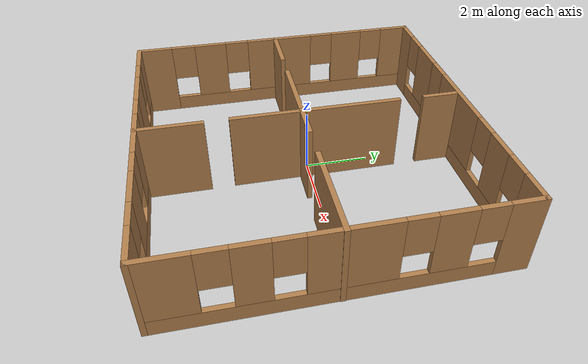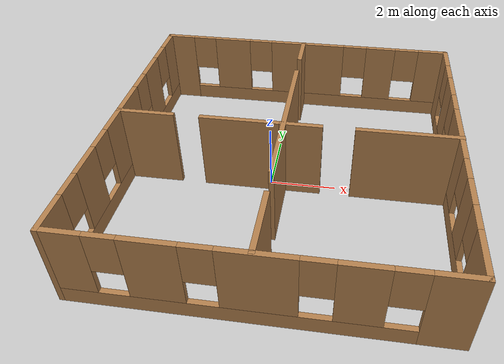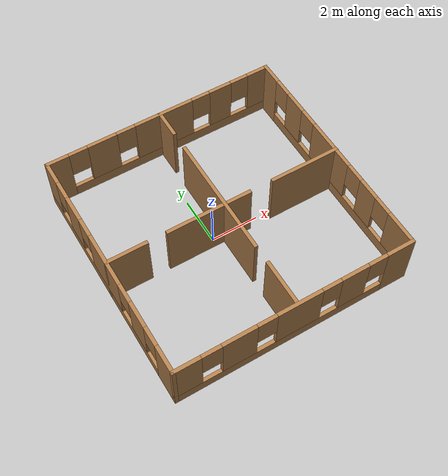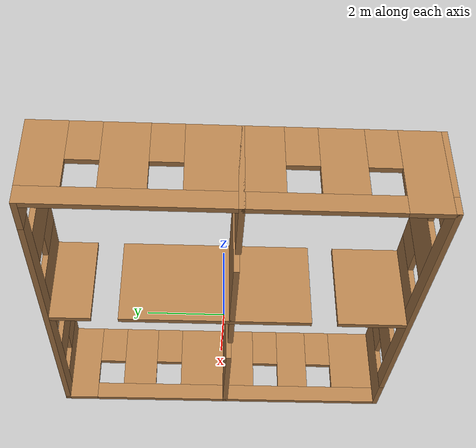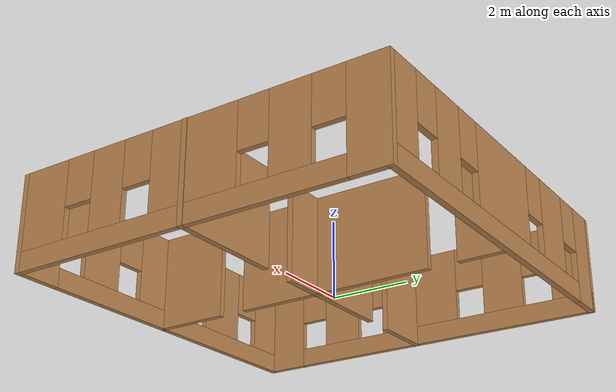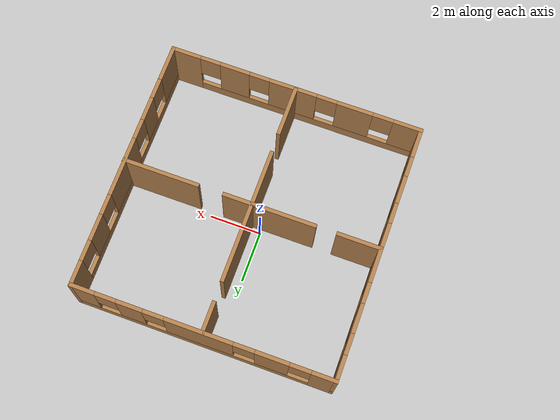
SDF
<?xml version='1.0'?>
<sdf version='1.7'>
  <model name='squre_house'>
    <pose>0.456528 -0.161928 0 0 -0 0</pose>
    <link name='Wall_10'>
      <pose>-4.93176 -0 0 0 -0 1.5708</pose>
      <visual name='Wall_10_Visual_0'>
        <pose>-4.40013 0 1.25 0 -0 0</pose>
        <geometry>
          <box>
            <size>1.19973 0.15 2.5</size>
          </box>
        </geometry>
        <material>
          <script>
            <uri>file://media/materials/scripts/gazebo.material</uri>
            <name>Gazebo/Wood</name>
          </script>
          <ambient>1 1 1 1</ambient>
        </material>
        <meta>
          <layer>0</layer>
        </meta>
      </visual>
      <collision name='Wall_10_Collision_0'>
        <geometry>
          <box>
            <size>1.19973 0.15 2.5</size>
          </box>
        </geometry>
        <pose>-4.40013 0 1.25 0 -0 0</pose>
      </collision>
      <visual name='Wall_10_Visual_1'>
        <pose>0.599865 0 0.25 0 -0 0</pose>
        <geometry>
          <box>
            <size>8.80027 0.15 0.5</size>
          </box>
        </geometry>
        <material>
          <script>
            <uri>file://media/materials/scripts/gazebo.material</uri>
            <name>Gazebo/Wood</name>
          </script>
          <ambient>1 1 1 1</ambient>
        </material>
        <meta>
          <layer>0</layer>
        </meta>
      </visual>
      <collision name='Wall_10_Collision_1'>
        <geometry>
          <box>
            <size>8.80027 0.15 0.5</size>
          </box>
        </geometry>
        <pose>0.599865 0 0.25 0 -0 0</pose>
      </collision>
      <visual name='Wall_10_Visual_2'>
        <pose>-2.44706 0 1.5 0 -0 0</pose>
        <geometry>
          <box>
            <size>1.10642 0.15 2</size>
          </box>
        </geometry>
        <material>
          <script>
            <uri>file://media/materials/scripts/gazebo.material</uri>
            <name>Gazebo/Wood</name>
          </script>
          <ambient>1 1 1 1</ambient>
        </material>
        <meta>
          <layer>0</layer>
        </meta>
      </visual>
      <collision name='Wall_10_Collision_2'>
        <geometry>
          <box>
            <size>1.10642 0.15 2</size>
          </box>
        </geometry>
        <pose>-2.44706 0 1.5 0 -0 0</pose>
      </collision>
      <visual name='Wall_10_Visual_3'>
        <pose>0.071508 0 1.5 0 -0 0</pose>
        <geometry>
          <box>
            <size>2.33072 0.15 2</size>
          </box>
        </geometry>
        <material>
          <script>
            <uri>file://media/materials/scripts/gazebo.material</uri>
            <name>Gazebo/Wood</name>
          </script>
          <ambient>1 1 1 1</ambient>
        </material>
        <meta>
          <layer>0</layer>
        </meta>
      </visual>
      <collision name='Wall_10_Collision_3'>
        <geometry>
          <box>
            <size>2.33072 0.15 2</size>
          </box>
        </geometry>
        <pose>0.071508 0 1.5 0 -0 0</pose>
      </collision>
      <visual name='Wall_10_Visual_4'>
        <pose>2.59882 0 1.5 0 -0 0</pose>
        <geometry>
          <box>
            <size>1.12391 0.15 2</size>
          </box>
        </geometry>
        <material>
          <script>
            <uri>file://media/materials/scripts/gazebo.material</uri>
            <name>Gazebo/Wood</name>
          </script>
          <ambient>1 1 1 1</ambient>
        </material>
        <meta>
          <layer>0</layer>
        </meta>
      </visual>
      <collision name='Wall_10_Collision_4'>
        <geometry>
          <box>
            <size>1.12391 0.15 2</size>
          </box>
        </geometry>
        <pose>2.59882 0 1.5 0 -0 0</pose>
      </collision>
      <visual name='Wall_10_Visual_5'>
        <pose>4.48039 0 1.5 0 -0 0</pose>
        <geometry>
          <box>
            <size>1.03923 0.15 2</size>
          </box>
        </geometry>
        <material>
          <script>
            <uri>file://media/materials/scripts/gazebo.material</uri>
            <name>Gazebo/Wood</name>
          </script>
          <ambient>1 1 1 1</ambient>
        </material>
        <meta>
          <layer>0</layer>
        </meta>
      </visual>
      <collision name='Wall_10_Collision_5'>
        <geometry>
          <box>
            <size>1.03923 0.15 2</size>
          </box>
        </geometry>
        <pose>4.48039 0 1.5 0 -0 0</pose>
      </collision>
      <visual name='Wall_10_Visual_6'>
        <pose>-3.40027 0 1.9 0 -0 0</pose>
        <geometry>
          <box>
            <size>0.8 0.15 1.2</size>
          </box>
        </geometry>
        <material>
          <script>
            <uri>file://media/materials/scripts/gazebo.material</uri>
            <name>Gazebo/Wood</name>
          </script>
          <ambient>1 1 1 1</ambient>
        </material>
        <meta>
          <layer>0</layer>
        </meta>
      </visual>
      <collision name='Wall_10_Collision_6'>
        <geometry>
          <box>
            <size>0.8 0.15 1.2</size>
          </box>
        </geometry>
        <pose>-3.40027 0 1.9 0 -0 0</pose>
      </collision>
      <visual name='Wall_10_Visual_7'>
        <pose>-1.49385 0 1.9 0 -0 0</pose>
        <geometry>
          <box>
            <size>0.8 0.15 1.2</size>
          </box>
        </geometry>
        <material>
          <script>
            <uri>file://media/materials/scripts/gazebo.material</uri>
            <name>Gazebo/Wood</name>
          </script>
          <ambient>1 1 1 1</ambient>
        </material>
        <meta>
          <layer>0</layer>
        </meta>
      </visual>
      <collision name='Wall_10_Collision_7'>
        <geometry>
          <box>
            <size>0.8 0.15 1.2</size>
          </box>
        </geometry>
        <pose>-1.49385 0 1.9 0 -0 0</pose>
      </collision>
      <visual name='Wall_10_Visual_8'>
        <pose>1.63687 0 1.9 0 -0 0</pose>
        <geometry>
          <box>
            <size>0.8 0.15 1.2</size>
          </box>
        </geometry>
        <material>
          <script>
            <uri>file://media/materials/scripts/gazebo.material</uri>
            <name>Gazebo/Wood</name>
          </script>
          <ambient>1 1 1 1</ambient>
        </material>
        <meta>
          <layer>0</layer>
        </meta>
      </visual>
      <collision name='Wall_10_Collision_8'>
        <geometry>
          <box>
            <size>0.8 0.15 1.2</size>
          </box>
        </geometry>
        <pose>1.63687 0 1.9 0 -0 0</pose>
      </collision>
      <visual name='Wall_10_Visual_9'>
        <pose>3.56078 0 1.9 0 -0 0</pose>
        <geometry>
          <box>
            <size>0.8 0.15 1.2</size>
          </box>
        </geometry>
        <material>
          <script>
            <uri>file://media/materials/scripts/gazebo.material</uri>
            <name>Gazebo/Wood</name>
          </script>
          <ambient>1 1 1 1</ambient>
        </material>
        <meta>
          <layer>0</layer>
        </meta>
      </visual>
      <collision name='Wall_10_Collision_9'>
        <geometry>
          <box>
            <size>0.8 0.15 1.2</size>
          </box>
        </geometry>
        <pose>3.56078 0 1.9 0 -0 0</pose>
      </collision>
    </link>
    <link name='Wall_12'>
      <collision name='Wall_12_Collision'>
        <geometry>
          <box>
            <size>1.25 0.15 2.5</size>
          </box>
        </geometry>
        <pose>0 0 1.25 0 -0 0</pose>
      </collision>
      <visual name='Wall_12_Visual'>
        <pose>0 0 1.25 0 -0 0</pose>
        <geometry>
          <box>
            <size>1.25 0.15 2.5</size>
          </box>
        </geometry>
        <material>
          <script>
            <uri>file://media/materials/scripts/gazebo.material</uri>
            <name>Gazebo/Wood</name>
          </script>
          <ambient>1 1 1 1</ambient>
        </material>
        <meta>
          <layer>0</layer>
        </meta>
      </visual>
      <pose>-0.03454 4.35751 0 0 -0 -1.5708</pose>
    </link>
    <link name='Wall_14'>
      <collision name='Wall_14_Collision'>
        <geometry>
          <box>
            <size>2 0.15 2.5</size>
          </box>
        </geometry>
        <pose>0 0 1.25 0 -0 0</pose>
      </collision>
      <visual name='Wall_14_Visual'>
        <pose>0 0 1.25 0 -0 0</pose>
        <geometry>
          <box>
            <size>2 0.15 2.5</size>
          </box>
        </geometry>
        <material>
          <script>
            <uri>file://media/materials/scripts/gazebo.material</uri>
            <name>Gazebo/Wood</name>
          </script>
          <ambient>1 1 1 1</ambient>
        </material>
        <meta>
          <layer>0</layer>
        </meta>
      </visual>
      <pose>-0.01705 -3.96192 0 0 -0 1.5708</pose>
    </link>
    <link name='Wall_17'>
      <collision name='Wall_17_Collision'>
        <geometry>
          <box>
            <size>1.75 0.15 2.5</size>
          </box>
        </geometry>
        <pose>0 0 1.25 0 -0 0</pose>
      </collision>
      <visual name='Wall_17_Visual'>
        <pose>0 0 1.25 0 -0 0</pose>
        <geometry>
          <box>
            <size>1.75 0.15 2.5</size>
          </box>
        </geometry>
        <material>
          <script>
            <uri>file://media/materials/scripts/gazebo.material</uri>
            <name>Gazebo/Wood</name>
          </script>
          <ambient>1 1 1 1</ambient>
        </material>
        <meta>
          <layer>0</layer>
        </meta>
      </visual>
      <pose>-4.13176 -0.077158 0 0 -0 0</pose>
    </link>
    <link name='Wall_19'>
      <collision name='Wall_19_Collision'>
        <geometry>
          <box>
            <size>2.5 0.15 2.5</size>
          </box>
        </geometry>
        <pose>0 0 1.25 0 -0 0</pose>
      </collision>
      <visual name='Wall_19_Visual'>
        <pose>0 0 1.25 0 -0 0</pose>
        <geometry>
          <box>
            <size>2.5 0.15 2.5</size>
          </box>
        </geometry>
        <material>
          <script>
            <uri>file://media/materials/scripts/gazebo.material</uri>
            <name>Gazebo/Wood</name>
          </script>
          <ambient>1 1 1 1</ambient>
        </material>
        <meta>
          <layer>0</layer>
        </meta>
      </visual>
      <pose>-1.25568 -0.077158 0 0 -0 0</pose>
    </link>
    <link name='Wall_21'>
      <collision name='Wall_21_Collision'>
        <geometry>
          <box>
            <size>3 0.15 2.5</size>
          </box>
        </geometry>
        <pose>0 0 1.25 0 -0 0</pose>
      </collision>
      <visual name='Wall_21_Visual'>
        <pose>0 0 1.25 0 -0 0</pose>
        <geometry>
          <box>
            <size>3 0.15 2.5</size>
          </box>
        </geometry>
        <material>
          <script>
            <uri>file://media/materials/scripts/gazebo.material</uri>
            <name>Gazebo/Wood</name>
          </script>
          <ambient>1 1 1 1</ambient>
        </material>
        <meta>
          <layer>0</layer>
        </meta>
      </visual>
      <pose>3.50676 -0.077158 0 0 -0 0</pose>
    </link>
    <link name='Wall_23'>
      <collision name='Wall_23_Collision'>
        <geometry>
          <box>
            <size>5.25 0.15 2.5</size>
          </box>
        </geometry>
        <pose>0 0 1.25 0 -0 0</pose>
      </collision>
      <visual name='Wall_23_Visual'>
        <pose>0 0 1.25 0 -0 0</pose>
        <geometry>
          <box>
            <size>5.25 0.15 2.5</size>
          </box>
        </geometry>
        <material>
          <script>
            <uri>file://media/materials/scripts/gazebo.material</uri>
            <name>Gazebo/Wood</name>
          </script>
          <ambient>1 1 1 1</ambient>
        </material>
        <meta>
          <layer>0</layer>
        </meta>
      </visual>
      <pose>-0.03454 0.374034 0 0 -0 1.5708</pose>
    </link>
    <link name='Wall_25'>
      <collision name='Wall_25_Collision'>
        <geometry>
          <box>
            <size>1.25 0.15 2.5</size>
          </box>
        </geometry>
        <pose>0 0 1.25 0 -0 0</pose>
      </collision>
      <visual name='Wall_25_Visual'>
        <pose>0 0 1.25 0 -0 0</pose>
        <geometry>
          <box>
            <size>1.25 0.15 2.5</size>
          </box>
        </geometry>
        <material>
          <script>
            <uri>file://media/materials/scripts/gazebo.material</uri>
            <name>Gazebo/Wood</name>
          </script>
          <ambient>1 1 1 1</ambient>
        </material>
        <meta>
          <layer>0</layer>
        </meta>
      </visual>
      <pose>0.469322 -0.077158 0 0 -0 0</pose>
    </link>
    <link name='Wall_6'>
      <pose>-0.006757 4.925 0 0 -0 0</pose>
      <visual name='Wall_6_Visual_0'>
        <pose>-4.51537 0 1.25 0 -0 0</pose>
        <geometry>
          <box>
            <size>0.969265 0.15 2.5</size>
          </box>
        </geometry>
        <material>
          <script>
            <uri>file://media/materials/scripts/gazebo.material</uri>
            <name>Gazebo/Wood</name>
          </script>
          <ambient>1 1 1 1</ambient>
        </material>
        <meta>
          <layer>0</layer>
        </meta>
      </visual>
      <collision name='Wall_6_Collision_0'>
        <geometry>
          <box>
            <size>0.969265 0.15 2.5</size>
          </box>
        </geometry>
        <pose>-4.51537 0 1.25 0 -0 0</pose>
      </collision>
      <visual name='Wall_6_Visual_1'>
        <pose>0.484632 0 0.25 0 -0 0</pose>
        <geometry>
          <box>
            <size>9.03073 0.15 0.5</size>
          </box>
        </geometry>
        <material>
          <script>
            <uri>file://media/materials/scripts/gazebo.material</uri>
            <name>Gazebo/Wood</name>
          </script>
          <ambient>1 1 1 1</ambient>
        </material>
        <meta>
          <layer>0</layer>
        </meta>
      </visual>
      <collision name='Wall_6_Collision_1'>
        <geometry>
          <box>
            <size>9.03073 0.15 0.5</size>
          </box>
        </geometry>
        <pose>0.484632 0 0.25 0 -0 0</pose>
      </collision>
      <visual name='Wall_6_Visual_2'>
        <pose>-2.59882 0 1.5 0 -0 0</pose>
        <geometry>
          <box>
            <size>1.26383 0.15 2</size>
          </box>
        </geometry>
        <material>
          <script>
            <uri>file://media/materials/scripts/gazebo.material</uri>
            <name>Gazebo/Wood</name>
          </script>
          <ambient>1 1 1 1</ambient>
        </material>
        <meta>
          <layer>0</layer>
        </meta>
      </visual>
      <collision name='Wall_6_Collision_2'>
        <geometry>
          <box>
            <size>1.26383 0.15 2</size>
          </box>
        </geometry>
        <pose>-2.59882 0 1.5 0 -0 0</pose>
      </collision>
      <visual name='Wall_6_Visual_3'>
        <pose>0.120883 0 1.5 0 -0 0</pose>
        <geometry>
          <box>
            <size>2.57558 0.15 2</size>
          </box>
        </geometry>
        <material>
          <script>
            <uri>file://media/materials/scripts/gazebo.material</uri>
            <name>Gazebo/Wood</name>
          </script>
          <ambient>1 1 1 1</ambient>
        </material>
        <meta>
          <layer>0</layer>
        </meta>
      </visual>
      <collision name='Wall_6_Collision_3'>
        <geometry>
          <box>
            <size>2.57558 0.15 2</size>
          </box>
        </geometry>
        <pose>0.120883 0 1.5 0 -0 0</pose>
      </collision>
      <visual name='Wall_6_Visual_4'>
        <pose>2.70941 0 1.5 0 -0 0</pose>
        <geometry>
          <box>
            <size>1.00148 0.15 2</size>
          </box>
        </geometry>
        <material>
          <script>
            <uri>file://media/materials/scripts/gazebo.material</uri>
            <name>Gazebo/Wood</name>
          </script>
          <ambient>1 1 1 1</ambient>
        </material>
        <meta>
          <layer>0</layer>
        </meta>
      </visual>
      <collision name='Wall_6_Collision_4'>
        <geometry>
          <box>
            <size>1.00148 0.15 2</size>
          </box>
        </geometry>
        <pose>2.70941 0 1.5 0 -0 0</pose>
      </collision>
      <visual name='Wall_6_Visual_5'>
        <pose>4.50507 0 1.5 0 -0 0</pose>
        <geometry>
          <box>
            <size>0.98985 0.15 2</size>
          </box>
        </geometry>
        <material>
          <script>
            <uri>file://media/materials/scripts/gazebo.material</uri>
            <name>Gazebo/Wood</name>
          </script>
          <ambient>1 1 1 1</ambient>
        </material>
        <meta>
          <layer>0</layer>
        </meta>
      </visual>
      <collision name='Wall_6_Collision_5'>
        <geometry>
          <box>
            <size>0.98985 0.15 2</size>
          </box>
        </geometry>
        <pose>4.50507 0 1.5 0 -0 0</pose>
      </collision>
      <visual name='Wall_6_Visual_6'>
        <pose>-3.63074 0 1.9 0 -0 0</pose>
        <geometry>
          <box>
            <size>0.8 0.15 1.2</size>
          </box>
        </geometry>
        <material>
          <script>
            <uri>file://media/materials/scripts/gazebo.material</uri>
            <name>Gazebo/Wood</name>
          </script>
          <ambient>1 1 1 1</ambient>
        </material>
        <meta>
          <layer>0</layer>
        </meta>
      </visual>
      <collision name='Wall_6_Collision_6'>
        <geometry>
          <box>
            <size>0.8 0.15 1.2</size>
          </box>
        </geometry>
        <pose>-3.63074 0 1.9 0 -0 0</pose>
      </collision>
      <visual name='Wall_6_Visual_7'>
        <pose>-1.56691 0 1.9 0 -0 0</pose>
        <geometry>
          <box>
            <size>0.8 0.15 1.2</size>
          </box>
        </geometry>
        <material>
          <script>
            <uri>file://media/materials/scripts/gazebo.material</uri>
            <name>Gazebo/Wood</name>
          </script>
          <ambient>1 1 1 1</ambient>
        </material>
        <meta>
          <layer>0</layer>
        </meta>
      </visual>
      <collision name='Wall_6_Collision_7'>
        <geometry>
          <box>
            <size>0.8 0.15 1.2</size>
          </box>
        </geometry>
        <pose>-1.56691 0 1.9 0 -0 0</pose>
      </collision>
      <visual name='Wall_6_Visual_8'>
        <pose>1.80867 0 1.9 0 -0 0</pose>
        <geometry>
          <box>
            <size>0.8 0.15 1.2</size>
          </box>
        </geometry>
        <material>
          <script>
            <uri>file://media/materials/scripts/gazebo.material</uri>
            <name>Gazebo/Wood</name>
          </script>
          <ambient>1 1 1 1</ambient>
        </material>
        <meta>
          <layer>0</layer>
        </meta>
      </visual>
      <collision name='Wall_6_Collision_8'>
        <geometry>
          <box>
            <size>0.8 0.15 1.2</size>
          </box>
        </geometry>
        <pose>1.80867 0 1.9 0 -0 0</pose>
      </collision>
      <visual name='Wall_6_Visual_9'>
        <pose>3.61015 0 1.9 0 -0 0</pose>
        <geometry>
          <box>
            <size>0.8 0.15 1.2</size>
          </box>
        </geometry>
        <material>
          <script>
            <uri>file://media/materials/scripts/gazebo.material</uri>
            <name>Gazebo/Wood</name>
          </script>
          <ambient>1 1 1 1</ambient>
        </material>
        <meta>
          <layer>0</layer>
        </meta>
      </visual>
      <collision name='Wall_6_Collision_9'>
        <geometry>
          <box>
            <size>0.8 0.15 1.2</size>
          </box>
        </geometry>
        <pose>3.61015 0 1.9 0 -0 0</pose>
      </collision>
    </link>
    <link name='Wall_8'>
      <pose>4.91824 -0 0 0 -0 -1.5708</pose>
      <visual name='Wall_8_Visual_0'>
        <pose>-4.49788 0 1.25 0 -0 0</pose>
        <geometry>
          <box>
            <size>1.00425 0.15 2.5</size>
          </box>
        </geometry>
        <material>
          <script>
            <uri>file://media/materials/scripts/gazebo.material</uri>
            <name>Gazebo/Wood</name>
          </script>
          <ambient>1 1 1 1</ambient>
        </material>
        <meta>
          <layer>0</layer>
        </meta>
      </visual>
      <collision name='Wall_8_Collision_0'>
        <geometry>
          <box>
            <size>1.00425 0.15 2.5</size>
          </box>
        </geometry>
        <pose>-4.49788 0 1.25 0 -0 0</pose>
      </collision>
      <visual name='Wall_8_Visual_1'>
        <pose>0.502122 0 0.25 0 -0 0</pose>
        <geometry>
          <box>
            <size>8.99576 0.15 0.5</size>
          </box>
        </geometry>
        <material>
          <script>
            <uri>file://media/materials/scripts/gazebo.material</uri>
            <name>Gazebo/Wood</name>
          </script>
          <ambient>1 1 1 1</ambient>
        </material>
        <meta>
          <layer>0</layer>
        </meta>
      </visual>
      <collision name='Wall_8_Collision_1'>
        <geometry>
          <box>
            <size>8.99576 0.15 0.5</size>
          </box>
        </geometry>
        <pose>0.502122 0 0.25 0 -0 0</pose>
      </collision>
      <visual name='Wall_8_Visual_2'>
        <pose>-2.67753 0 1.5 0 -0 0</pose>
        <geometry>
          <box>
            <size>1.03646 0.15 2</size>
          </box>
        </geometry>
        <material>
          <script>
            <uri>file://media/materials/scripts/gazebo.material</uri>
            <name>Gazebo/Wood</name>
          </script>
          <ambient>1 1 1 1</ambient>
        </material>
        <meta>
          <layer>0</layer>
        </meta>
      </visual>
      <collision name='Wall_8_Collision_2'>
        <geometry>
          <box>
            <size>1.03646 0.15 2</size>
          </box>
        </geometry>
        <pose>-2.67753 0 1.5 0 -0 0</pose>
      </collision>
      <visual name='Wall_8_Visual_3'>
        <pose>-0.185193 0 1.5 0 -0 0</pose>
        <geometry>
          <box>
            <size>2.34821 0.15 2</size>
          </box>
        </geometry>
        <material>
          <script>
            <uri>file://media/materials/scripts/gazebo.material</uri>
            <name>Gazebo/Wood</name>
          </script>
          <ambient>1 1 1 1</ambient>
        </material>
        <meta>
          <layer>0</layer>
        </meta>
      </visual>
      <collision name='Wall_8_Collision_3'>
        <geometry>
          <box>
            <size>2.34821 0.15 2</size>
          </box>
        </geometry>
        <pose>-0.185193 0 1.5 0 -0 0</pose>
      </collision>
      <visual name='Wall_8_Visual_4'>
        <pose>2.26342 0 1.5 0 -0 0</pose>
        <geometry>
          <box>
            <size>0.949006 0.15 2</size>
          </box>
        </geometry>
        <material>
          <script>
            <uri>file://media/materials/scripts/gazebo.material</uri>
            <name>Gazebo/Wood</name>
          </script>
          <ambient>1 1 1 1</ambient>
        </material>
        <meta>
          <layer>0</layer>
        </meta>
      </visual>
      <collision name='Wall_8_Collision_4'>
        <geometry>
          <box>
            <size>0.949006 0.15 2</size>
          </box>
        </geometry>
        <pose>2.26342 0 1.5 0 -0 0</pose>
      </collision>
      <visual name='Wall_8_Visual_5'>
        <pose>4.26896 0 1.5 0 -0 0</pose>
        <geometry>
          <box>
            <size>1.46208 0.15 2</size>
          </box>
        </geometry>
        <material>
          <script>
            <uri>file://media/materials/scripts/gazebo.material</uri>
            <name>Gazebo/Wood</name>
          </script>
          <ambient>1 1 1 1</ambient>
        </material>
        <meta>
          <layer>0</layer>
        </meta>
      </visual>
      <collision name='Wall_8_Collision_5'>
        <geometry>
          <box>
            <size>1.46208 0.15 2</size>
          </box>
        </geometry>
        <pose>4.26896 0 1.5 0 -0 0</pose>
      </collision>
      <visual name='Wall_8_Visual_6'>
        <pose>-3.59576 0 1.9 0 -0 0</pose>
        <geometry>
          <box>
            <size>0.8 0.15 1.2</size>
          </box>
        </geometry>
        <material>
          <script>
            <uri>file://media/materials/scripts/gazebo.material</uri>
            <name>Gazebo/Wood</name>
          </script>
          <ambient>1 1 1 1</ambient>
        </material>
        <meta>
          <layer>0</layer>
        </meta>
      </visual>
      <collision name='Wall_8_Collision_6'>
        <geometry>
          <box>
            <size>0.8 0.15 1.2</size>
          </box>
        </geometry>
        <pose>-3.59576 0 1.9 0 -0 0</pose>
      </collision>
      <visual name='Wall_8_Visual_7'>
        <pose>-1.7593 0 1.9 0 -0 0</pose>
        <geometry>
          <box>
            <size>0.8 0.15 1.2</size>
          </box>
        </geometry>
        <material>
          <script>
            <uri>file://media/materials/scripts/gazebo.material</uri>
            <name>Gazebo/Wood</name>
          </script>
          <ambient>1 1 1 1</ambient>
        </material>
        <meta>
          <layer>0</layer>
        </meta>
      </visual>
      <collision name='Wall_8_Collision_7'>
        <geometry>
          <box>
            <size>0.8 0.15 1.2</size>
          </box>
        </geometry>
        <pose>-1.7593 0 1.9 0 -0 0</pose>
      </collision>
      <visual name='Wall_8_Visual_8'>
        <pose>1.38891 0 1.9 0 -0 0</pose>
        <geometry>
          <box>
            <size>0.8 0.15 1.2</size>
          </box>
        </geometry>
        <material>
          <script>
            <uri>file://media/materials/scripts/gazebo.material</uri>
            <name>Gazebo/Wood</name>
          </script>
          <ambient>1 1 1 1</ambient>
        </material>
        <meta>
          <layer>0</layer>
        </meta>
      </visual>
      <collision name='Wall_8_Collision_8'>
        <geometry>
          <box>
            <size>0.8 0.15 1.2</size>
          </box>
        </geometry>
        <pose>1.38891 0 1.9 0 -0 0</pose>
      </collision>
      <visual name='Wall_8_Visual_9'>
        <pose>3.13792 0 1.9 0 -0 0</pose>
        <geometry>
          <box>
            <size>0.8 0.15 1.2</size>
          </box>
        </geometry>
        <material>
          <script>
            <uri>file://media/materials/scripts/gazebo.material</uri>
            <name>Gazebo/Wood</name>
          </script>
          <ambient>1 1 1 1</ambient>
        </material>
        <meta>
          <layer>0</layer>
        </meta>
      </visual>
      <collision name='Wall_8_Collision_9'>
        <geometry>
          <box>
            <size>0.8 0.15 1.2</size>
          </box>
        </geometry>
        <pose>3.13792 0 1.9 0 -0 0</pose>
      </collision>
    </link>
    <link name='Wall_9'>
      <pose>-0.006757 -4.925 0 0 -0 3.14159</pose>
      <visual name='Wall_9_Visual_0'>
        <pose>-4.40013 0 1.25 0 -0 0</pose>
        <geometry>
          <box>
            <size>1.19973 0.15 2.5</size>
          </box>
        </geometry>
        <material>
          <script>
            <uri>file://media/materials/scripts/gazebo.material</uri>
            <name>Gazebo/Wood</name>
          </script>
          <ambient>1 1 1 1</ambient>
        </material>
        <meta>
          <layer>0</layer>
        </meta>
      </visual>
      <collision name='Wall_9_Collision_0'>
        <geometry>
          <box>
            <size>1.19973 0.15 2.5</size>
          </box>
        </geometry>
        <pose>-4.40013 0 1.25 0 -0 0</pose>
      </collision>
      <visual name='Wall_9_Visual_1'>
        <pose>0.599865 0 0.25 0 -0 0</pose>
        <geometry>
          <box>
            <size>8.80027 0.15 0.5</size>
          </box>
        </geometry>
        <material>
          <script>
            <uri>file://media/materials/scripts/gazebo.material</uri>
            <name>Gazebo/Wood</name>
          </script>
          <ambient>1 1 1 1</ambient>
        </material>
        <meta>
          <layer>0</layer>
        </meta>
      </visual>
      <collision name='Wall_9_Collision_1'>
        <geometry>
          <box>
            <size>8.80027 0.15 0.5</size>
          </box>
        </geometry>
        <pose>0.599865 0 0.25 0 -0 0</pose>
      </collision>
      <visual name='Wall_9_Visual_2'>
        <pose>-2.41208 0 1.5 0 -0 0</pose>
        <geometry>
          <box>
            <size>1.17638 0.15 2</size>
          </box>
        </geometry>
        <material>
          <script>
            <uri>file://media/materials/scripts/gazebo.material</uri>
            <name>Gazebo/Wood</name>
          </script>
          <ambient>1 1 1 1</ambient>
        </material>
        <meta>
          <layer>0</layer>
        </meta>
      </visual>
      <collision name='Wall_9_Collision_2'>
        <geometry>
          <box>
            <size>1.17638 0.15 2</size>
          </box>
        </geometry>
        <pose>-2.41208 0 1.5 0 -0 0</pose>
      </collision>
      <visual name='Wall_9_Visual_3'>
        <pose>-0.085903 0 1.5 0 -0 0</pose>
        <geometry>
          <box>
            <size>1.87598 0.15 2</size>
          </box>
        </geometry>
        <material>
          <script>
            <uri>file://media/materials/scripts/gazebo.material</uri>
            <name>Gazebo/Wood</name>
          </script>
          <ambient>1 1 1 1</ambient>
        </material>
        <meta>
          <layer>0</layer>
        </meta>
      </visual>
      <collision name='Wall_9_Collision_3'>
        <geometry>
          <box>
            <size>1.87598 0.15 2</size>
          </box>
        </geometry>
        <pose>-0.085903 0 1.5 0 -0 0</pose>
      </collision>
      <visual name='Wall_9_Visual_4'>
        <pose>2.35396 0 1.5 0 -0 0</pose>
        <geometry>
          <box>
            <size>1.40375 0.15 2</size>
          </box>
        </geometry>
        <material>
          <script>
            <uri>file://media/materials/scripts/gazebo.material</uri>
            <name>Gazebo/Wood</name>
          </script>
          <ambient>1 1 1 1</ambient>
        </material>
        <meta>
          <layer>0</layer>
        </meta>
      </visual>
      <collision name='Wall_9_Collision_4'>
        <geometry>
          <box>
            <size>1.40375 0.15 2</size>
          </box>
        </geometry>
        <pose>2.35396 0 1.5 0 -0 0</pose>
      </collision>
      <visual name='Wall_9_Visual_5'>
        <pose>4.42792 0 1.5 0 -0 0</pose>
        <geometry>
          <box>
            <size>1.14417 0.15 2</size>
          </box>
        </geometry>
        <material>
          <script>
            <uri>file://media/materials/scripts/gazebo.material</uri>
            <name>Gazebo/Wood</name>
          </script>
          <ambient>1 1 1 1</ambient>
        </material>
        <meta>
          <layer>0</layer>
        </meta>
      </visual>
      <collision name='Wall_9_Collision_5'>
        <geometry>
          <box>
            <size>1.14417 0.15 2</size>
          </box>
        </geometry>
        <pose>4.42792 0 1.5 0 -0 0</pose>
      </collision>
      <visual name='Wall_9_Visual_6'>
        <pose>-3.40027 0 1.9 0 -0 0</pose>
        <geometry>
          <box>
            <size>0.8 0.15 1.2</size>
          </box>
        </geometry>
        <material>
          <script>
            <uri>file://media/materials/scripts/gazebo.material</uri>
            <name>Gazebo/Wood</name>
          </script>
          <ambient>1 1 1 1</ambient>
        </material>
        <meta>
          <layer>0</layer>
        </meta>
      </visual>
      <collision name='Wall_9_Collision_6'>
        <geometry>
          <box>
            <size>0.8 0.15 1.2</size>
          </box>
        </geometry>
        <pose>-3.40027 0 1.9 0 -0 0</pose>
      </collision>
      <visual name='Wall_9_Visual_7'>
        <pose>-1.42389 0 1.9 0 -0 0</pose>
        <geometry>
          <box>
            <size>0.8 0.15 1.2</size>
          </box>
        </geometry>
        <material>
          <script>
            <uri>file://media/materials/scripts/gazebo.material</uri>
            <name>Gazebo/Wood</name>
          </script>
          <ambient>1 1 1 1</ambient>
        </material>
        <meta>
          <layer>0</layer>
        </meta>
      </visual>
      <collision name='Wall_9_Collision_7'>
        <geometry>
          <box>
            <size>0.8 0.15 1.2</size>
          </box>
        </geometry>
        <pose>-1.42389 0 1.9 0 -0 0</pose>
      </collision>
      <visual name='Wall_9_Visual_8'>
        <pose>1.25209 0 1.9 0 -0 0</pose>
        <geometry>
          <box>
            <size>0.8 0.15 1.2</size>
          </box>
        </geometry>
        <material>
          <script>
            <uri>file://media/materials/scripts/gazebo.material</uri>
            <name>Gazebo/Wood</name>
          </script>
          <ambient>1 1 1 1</ambient>
        </material>
        <meta>
          <layer>0</layer>
        </meta>
      </visual>
      <collision name='Wall_9_Collision_8'>
        <geometry>
          <box>
            <size>0.8 0.15 1.2</size>
          </box>
        </geometry>
        <pose>1.25209 0 1.9 0 -0 0</pose>
      </collision>
      <visual name='Wall_9_Visual_9'>
        <pose>3.45583 0 1.9 0 -0 0</pose>
        <geometry>
          <box>
            <size>0.8 0.15 1.2</size>
          </box>
        </geometry>
        <material>
          <script>
            <uri>file://media/materials/scripts/gazebo.material</uri>
            <name>Gazebo/Wood</name>
          </script>
          <ambient>1 1 1 1</ambient>
        </material>
        <meta>
          <layer>0</layer>
        </meta>
      </visual>
      <collision name='Wall_9_Collision_9'>
        <geometry>
          <box>
            <size>0.8 0.15 1.2</size>
          </box>
        </geometry>
        <pose>3.45583 0 1.9 0 -0 0</pose>
      </collision>
    </link>
    <static>1</static>
  </model>
</sdf>
